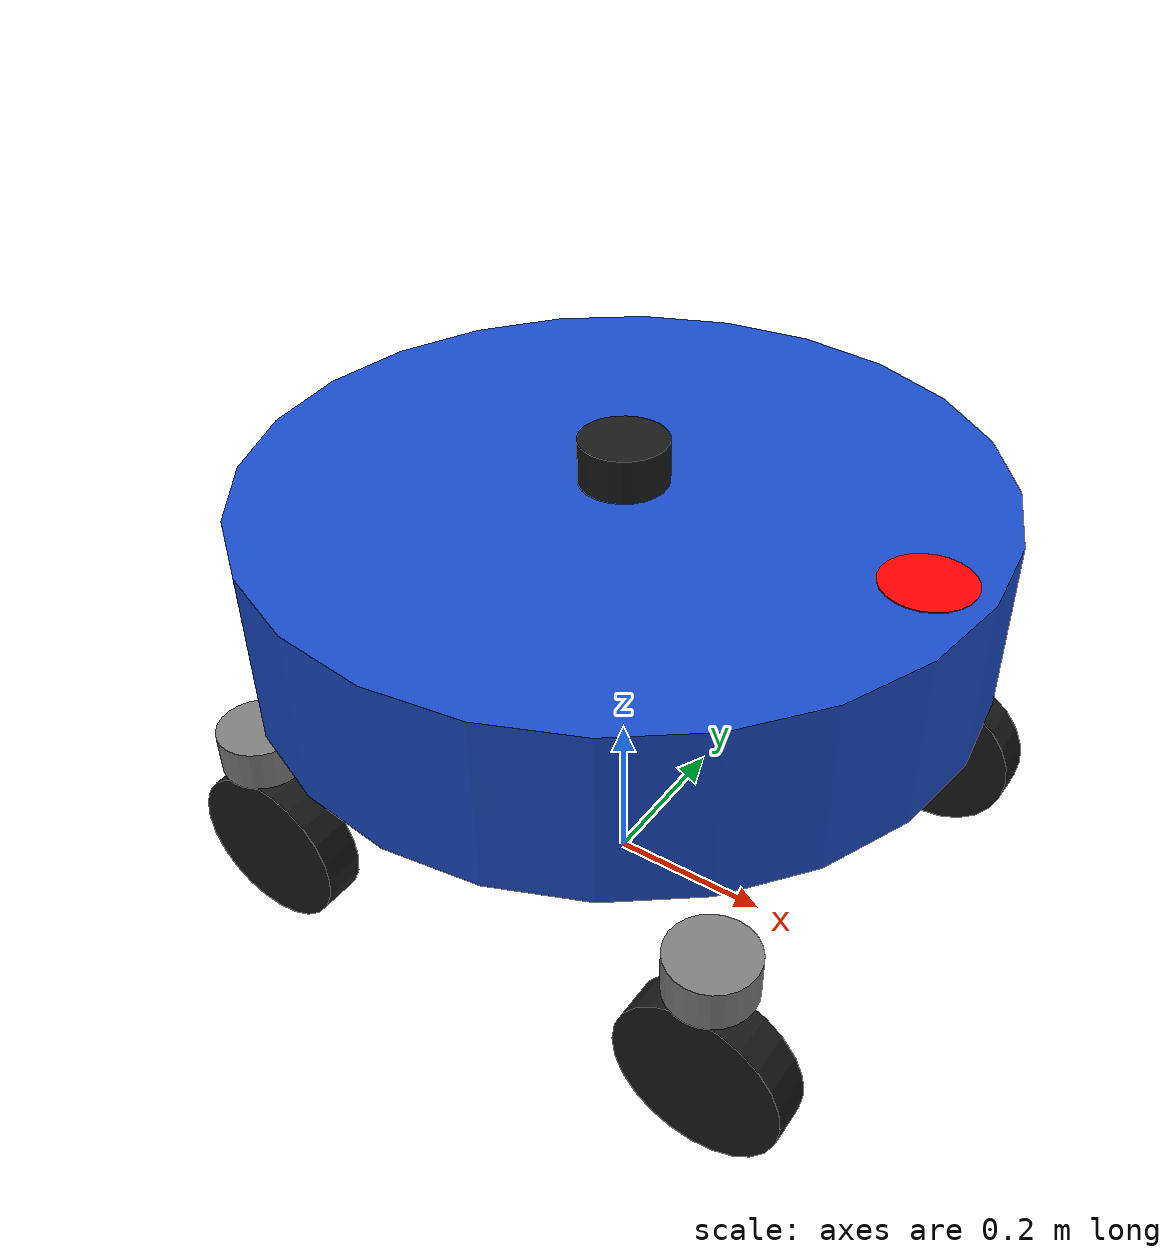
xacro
<?xml version="1.0"?>
<!-- File: ~/ros2_ws/src/multi_swerve_robot/multi_swerve_description/urdf/swerve_robot.urdf.xacro -->
<robot name="swerve_robot" xmlns:xacro="http://www.ros.org/wiki/xacro">

    <xacro:arg name="robot_name" default=""/>
    <xacro:include filename="swerve_module.xacro" />

    <link name="base_footprint"/>

    <link name="base_link">
        <visual>
            <origin xyz="0 0 0.1" rpy="0 0 0"/>
            <geometry>
                <cylinder radius="0.42" length="0.2"/>
            </geometry>
            <material name="blue_solid">
                <color rgba="0.1 0.3 0.8 1.0"/>
            </material>
        </visual>
        <collision>
            <origin xyz="0 0 0.1" rpy="0 0 0"/>
            <geometry>
                <cylinder radius="0.42" length="0.2"/>
            </geometry>
        </collision>
        <inertial>
            <origin xyz="0 0 0.1" rpy="0 0 0"/>
            <mass value="20.0"/>
            <inertia ixx="0.948" ixy="0" ixz="0" iyy="0.948" iyz="0" izz="1.764"/>
        </inertial>
    </link>

    <joint name="base_joint" type="fixed">
        <parent link="base_footprint"/>
        <child link="base_link"/>
        <origin xyz="0 0 0.35" rpy="0 0 0"/>
    </joint>

    <link name="front_indicator_link">
        <visual>
            <geometry>
                <cylinder radius="0.05" length="0.001"/>
            </geometry>
            <material name="red">
                <color rgba="1.0 0.0 0.0 1.0"/>
            </material>
        </visual>
    </link>
    <joint name="front_indicator_joint" type="fixed">
        <parent link="base_link"/>
        <child link="front_indicator_link"/>
        <origin xyz="0.35 0 0.2005" rpy="0 0 0"/>
    </joint>

    <xacro:swerve_module prefix="fl" x="0.3" y="0.3" z="-0.1" />
    <xacro:swerve_module prefix="fr" x="0.3" y="-0.3" z="-0.1" />
    <xacro:swerve_module prefix="rl" x="-0.3" y="0.3" z="-0.1" />
    <xacro:swerve_module prefix="rr" x="-0.3" y="-0.3" z="-0.1" />

    <link name="lidar_link">
        <visual>
            <geometry>
                <cylinder radius="0.05" length="0.05"/>
            </geometry>
            <material name="black"/>
        </visual>
    </link>
    <joint name="lidar_joint" type="fixed">
        <parent link="base_link"/>
        <child link="lidar_link"/>
        <origin xyz="0 0 0.225" rpy="0 0 0"/>
    </joint>

    <link name="imu_link"/>
    <joint name="imu_joint" type="fixed">
        <parent link="base_link"/>
        <child link="imu_link"/>
        <origin xyz="0 0 0" rpy="0 0 0"/>
    </joint>

    <!-- Corrected Humble ign_ros2_control hardware system -->
    <ros2_control name="IgnitionSystem" type="system">
        <hardware>
            <plugin>ign_ros2_control/IgnitionSystem</plugin>
        </hardware>
        <xacro:swerve_ros2_control prefix="fl" />
        <xacro:swerve_ros2_control prefix="fr" />
        <xacro:swerve_ros2_control prefix="rl" />
        <xacro:swerve_ros2_control prefix="rr" />
    </ros2_control>

    <gazebo reference="lidar_link">
        <sensor name="lidar" type="gpu_lidar">
            <always_on>true</always_on>
            <visualize>true</visualize>
            <update_rate>10</update_rate>
            <ray>
                <scan>
                    <horizontal>
                        <samples>360</samples>
                        <resolution>1.0</resolution>
                        <min_angle>-3.14159</min_angle>
                        <max_angle>3.14159</max_angle>
                    </horizontal>
                </scan>
                <range>
                    <min>0.45</min>
                    <max>25.0</max>
                    <resolution>0.015</resolution>
                </range>
            </ray>
            <topic>$(arg robot_name)/scan</topic>
            <ignition_frame_id>$(arg robot_name)/lidar_link</ignition_frame_id>
        </sensor>
    </gazebo>

    <gazebo reference="imu_link">
        <sensor name="imu" type="imu">
            <always_on>true</always_on>
            <update_rate>50</update_rate>
            <topic>$(arg robot_name)/imu/data</topic>
            <ignition_frame_id>$(arg robot_name)/imu_link</ignition_frame_id>
        </sensor>
    </gazebo>

    <!-- Corrected Humble ign_ros2_control plugin -->
    <gazebo>
        <plugin filename="ign_ros2_control-system" name="ign_ros2_control::IgnitionROS2ControlPlugin">
            <ros>
                <namespace>$(arg robot_name)</namespace>
            </ros>
            <parameters>$(find multi_swerve_control)/config/swerve_controllers.yaml</parameters>
        </plugin>
    </gazebo>

</robot>

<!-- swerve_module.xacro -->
<!-- File: ~/ros2_ws/src/swerve_robot/swerve_description/urdf/swerve_module.xacro -->
<robot xmlns:xacro="http://www.ros.org/wiki/xacro">

    <xacro:macro name="swerve_module" params="prefix x y z">

        <!-- Steering Link (Yaw) -->
        <link name="${prefix}_steering_link">
            <visual>
                <geometry>
                    <cylinder radius="0.05" length="0.05"/>
                </geometry>
                <material name="gray">
                    <color rgba="0.5 0.5 0.5 1.0"/>
                </material>
            </visual>
            <collision>
                <geometry>
                    <cylinder radius="0.05" length="0.05"/>
                </geometry>
            </collision>
            <inertial>
                <mass value="0.5"/>
                <inertia ixx="0.0004" ixy="0" ixz="0" iyy="0.0004" iyz="0" izz="0.0006"/>
            </inertial>
        </link>

        <joint name="${prefix}_steering_joint" type="continuous">
            <parent link="base_link"/>
            <child link="${prefix}_steering_link"/>
            <origin xyz="${x} ${y} ${z}" rpy="0 0 0"/>
            <axis xyz="0 0 1"/>
            <limit effort="20.0" velocity="10.0"/>
            <dynamics damping="0.5" friction="0.1"/>
        </joint>

        <!-- Wheel Link (Pitch) -->
        <link name="${prefix}_wheel_link">
            <visual>
                <origin xyz="0 0 0" rpy="${pi/2} 0 0"/>
                <geometry>
                    <cylinder radius="0.1" length="0.05"/>
                </geometry>
                <material name="black">
                    <color rgba="0.1 0.1 0.1 1.0"/>
                </material>
            </visual>
            <collision>
                <origin xyz="0 0 0" rpy="0 0 0"/>
                <geometry>
                    <sphere radius="0.1"/>
                </geometry>
            </collision>
            <inertial>
                <mass value="1.0"/>
                <inertia ixx="0.004" ixy="0" ixz="0" iyy="0.004" iyz="0" izz="0.004"/>
            </inertial>
        </link>

        <joint name="${prefix}_wheel_joint" type="continuous">
            <parent link="${prefix}_steering_link"/>
            <child link="${prefix}_wheel_link"/>
            <origin xyz="0 0 -0.15" rpy="0 0 0"/>
            <axis xyz="0 1 0"/>
            <limit effort="20.0" velocity="25.0"/>
            <dynamics damping="0.1" friction="0.05"/>
        </joint>

        <gazebo reference="${prefix}_wheel_link">
            <mu1>1.5</mu1>
            <mu2>1.5</mu2>
            <kp>1000000.0</kp>
            <kd>100.0</kd>
        </gazebo>

    </xacro:macro>

    <!-- Macro for generating the ros2_control interfaces for a module -->
    <xacro:macro name="swerve_ros2_control" params="prefix">
        <joint name="${prefix}_steering_joint">
            <command_interface name="position"/>
            <state_interface name="position"/>
            <state_interface name="velocity"/>
        </joint>
        <joint name="${prefix}_wheel_joint">
            <command_interface name="velocity"/>
            <state_interface name="position"/>
            <state_interface name="velocity"/>
        </joint>
    </xacro:macro>

</robot>
